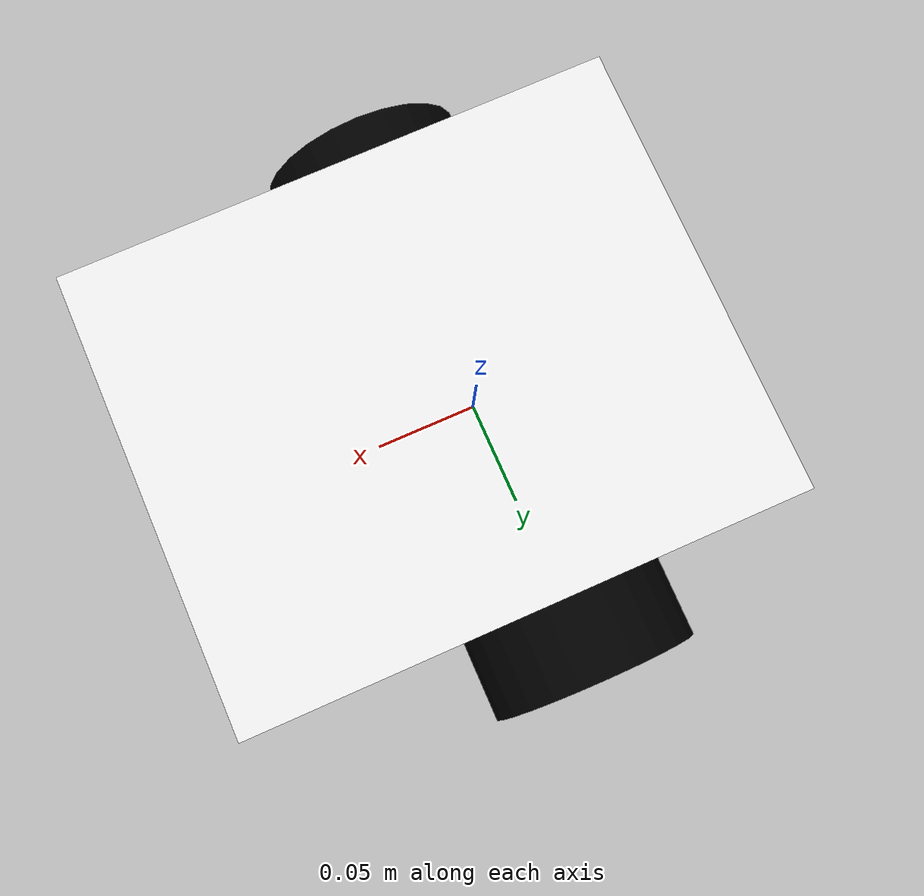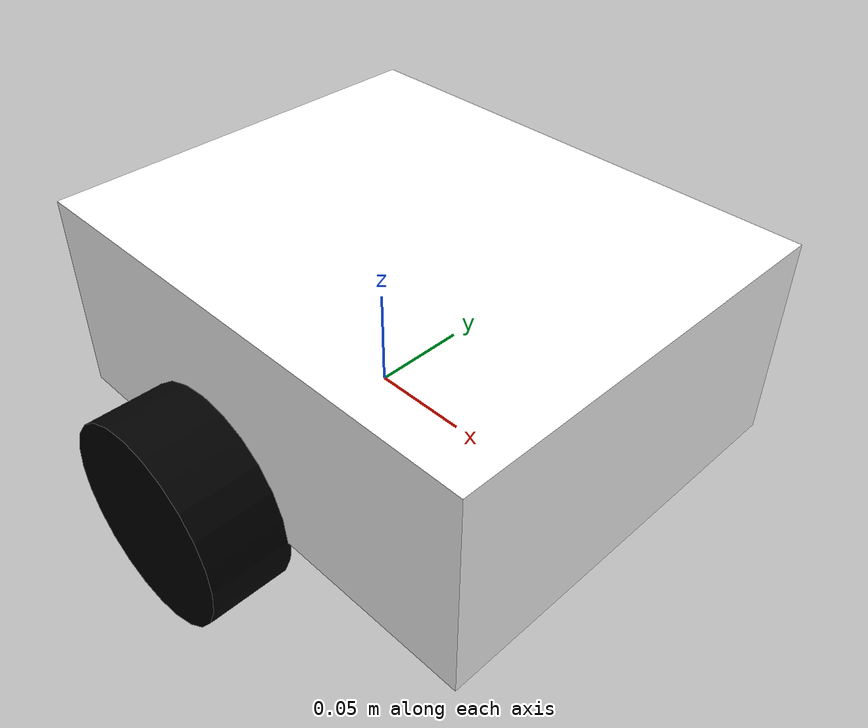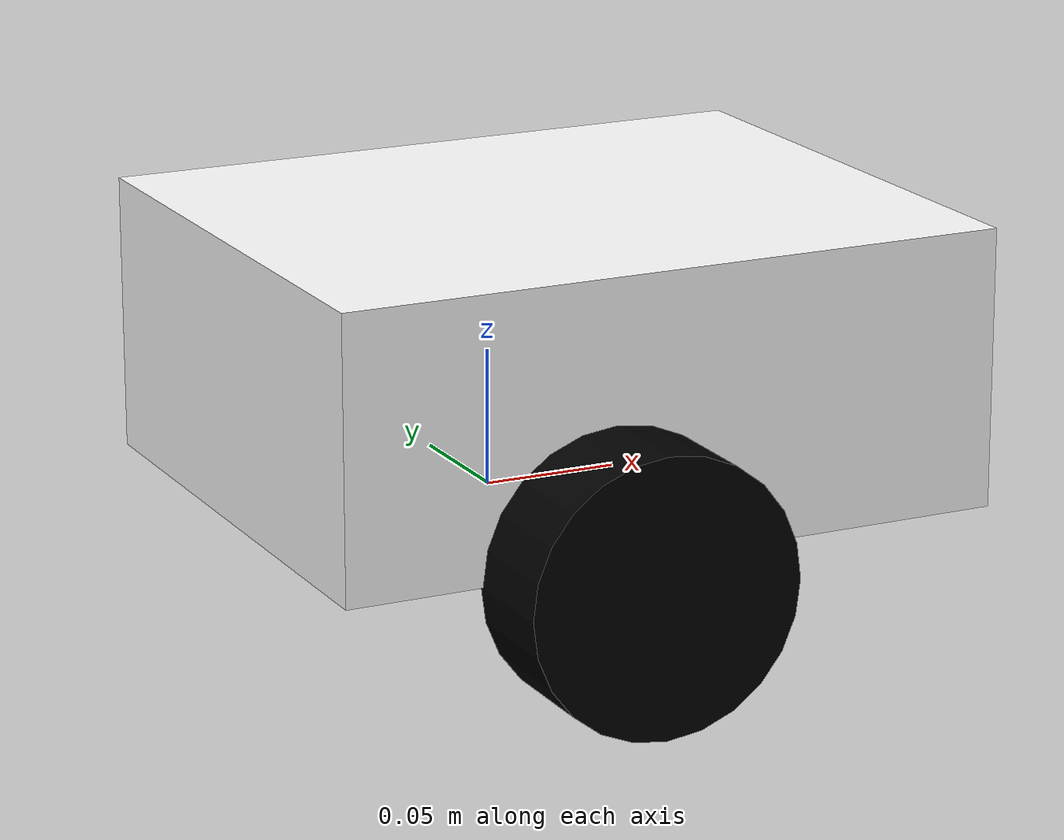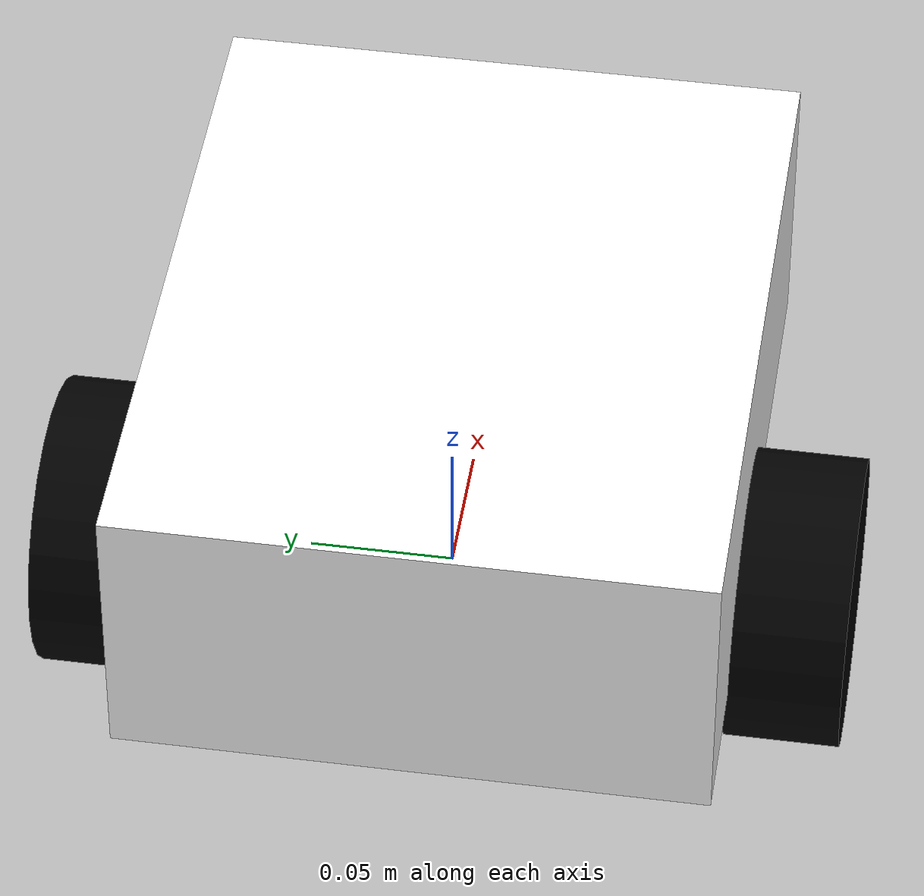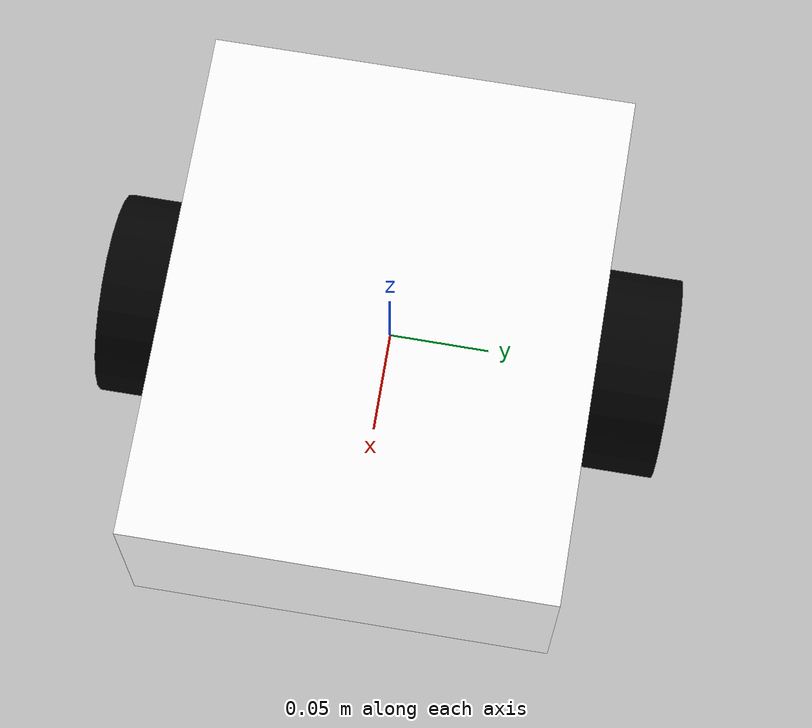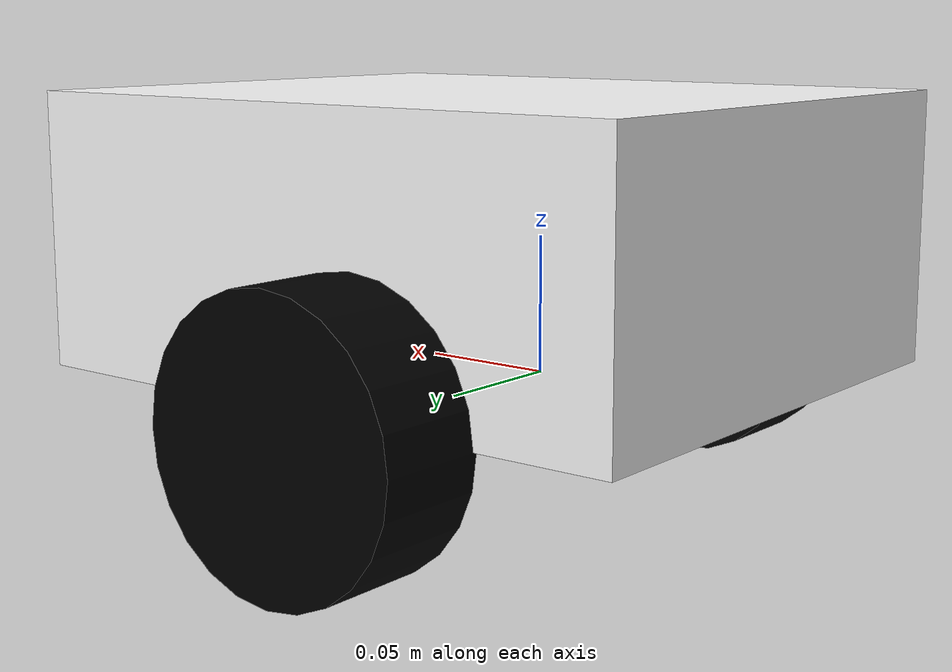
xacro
<?xml version="1.0"?>
<robot xmlns:xacro="http://www.ros.org/wiki/xacro" name="xfs_rover">

    <material name="white">
        <color rgba="1 1 1 1" />
    </material>
    <material name="black">
        <color rgba="0 0 0 1" />
    </material>

    <link name="base_link"></link>

    <joint name="chassis_joint" type="fixed">
        <parent link="base_link"/>
        <child link="chassis"/>
        <origin xyz="-0.1 0 0"/>
    </joint>

    <link name="chassis">
        <visual>
            <origin xyz="0.123825 0 0.0508"/>
            <geometry>
                <box size="0.24765 0.2032 0.1016"/>
            </geometry>
            <material name="white"/>
        </visual>
    </link>

    <joint name="left_wheel_joint" type="continuous">
        <parent link="base_link"/>
        <child link="left_wheel"/>
        <origin xyz="0 0.12 0" rpy="-${pi/2} 0 0"/>
        <axis xyz="0 0 1"/>
    </joint>

    <link name="left_wheel">
        <visual>
            <geometry>
                <cylinder radius="0.05" length="0.04"/>
            </geometry>
            <material name="black"/>
        </visual>
    </link>

    <joint name="right_wheel_joint" type="continuous">
        <parent link="base_link"/>
        <child link="right_wheel"/>
        <origin xyz="0 -0.12 0" rpy="${pi/2} 0 0"/>
        <axis xyz="0 0 1"/>
    </joint>

    <link name="right_wheel">
        <visual>
            <geometry>
                <cylinder radius="0.05" length="0.04"/>
            </geometry>
            <material name="black"/>
        </visual>
    </link>

</robot>
